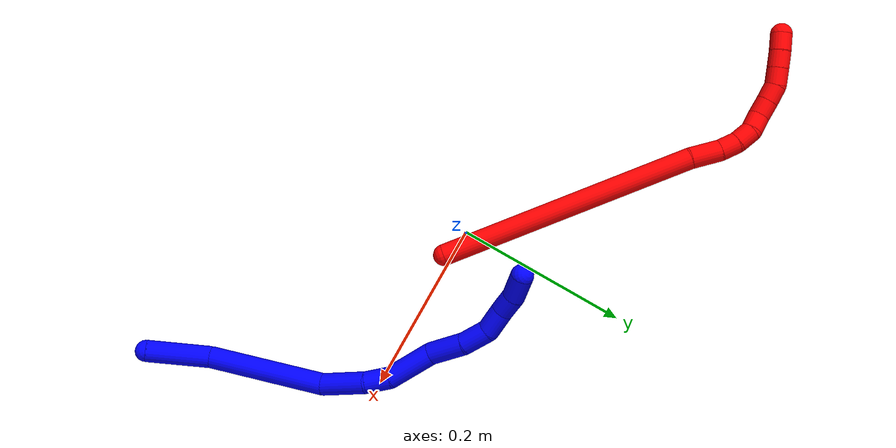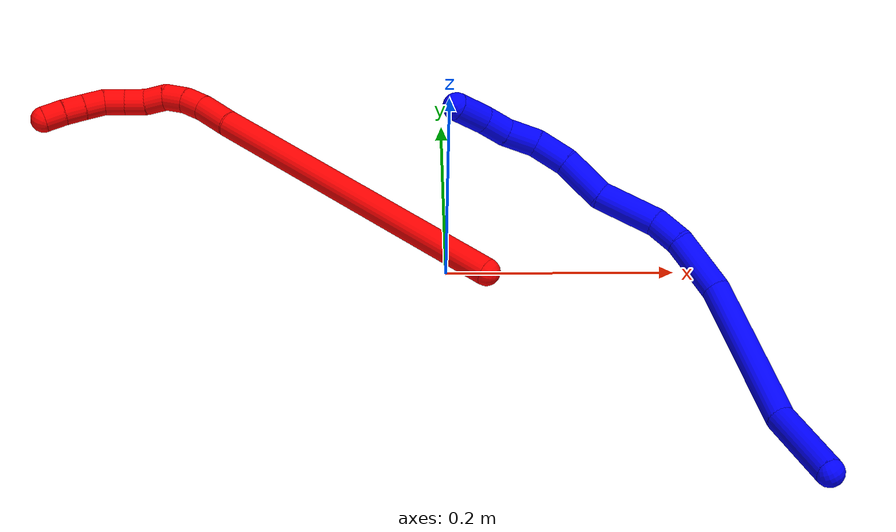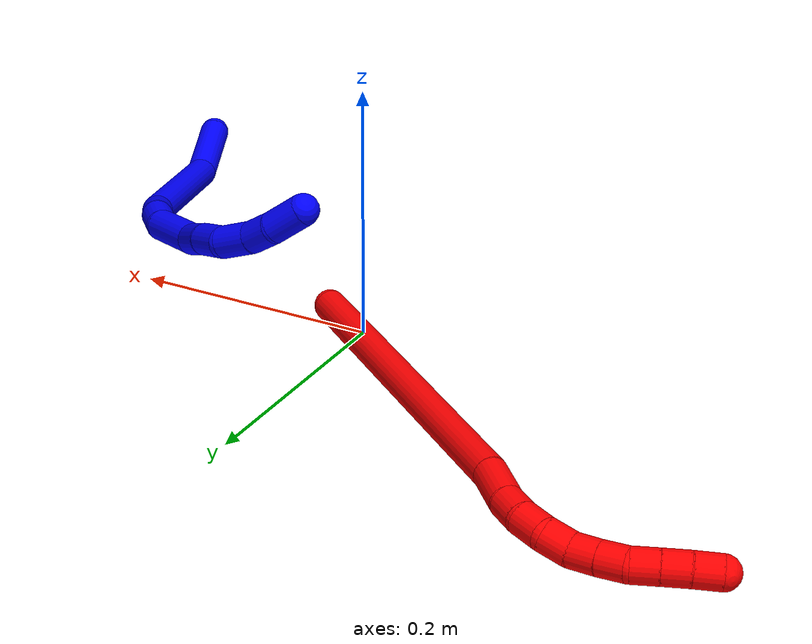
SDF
<sdf version="1.7">
 <world name="default">
  <model name="1">
   <static>0</static>
   <link name="1">
    <collision name="collision-cylinder-e_1_1_4">
     <pose>0.033252 0.004194 0.014067 -0.289757 1.15507 -0.189582</pose>
     <geometry><cylinder><radius>0.0125</radius><length>0.072695</length></cylinder></geometry>
     <surface>
      <friction><ode><mu>1.16</mu><mu2>1.16</mu2><slip1>0</slip1><slip2>0</slip2></ode></friction>
      <contact><ode><kp>1e+06</kp><kd>1</kd><max_vel>0</max_vel><min_depth>0.001</min_depth></ode></contact>
     </surface>
    </collision>
    <visual name="visual-cylinder-e_1_1_4">
     <pose>0.033252 0.004194 0.014067 -0.289757 1.15507 -0.189582</pose>
     <geometry><cylinder><radius>0.0125</radius><length>0.072695</length></cylinder></geometry>
     <material><ambient>0 0 1 1</ambient></material>
    </visual>
    <collision name="collision-cylinder-e_2_4_5">
     <pose>0.120568 0.003093 0.068982 0.128926 0.919756 0.063923</pose>
     <geometry><cylinder><radius>0.0125</radius><length>0.135935</length></cylinder></geometry>
     <surface>
      <friction><ode><mu>1.16</mu><mu2>1.16</mu2><slip1>0</slip1><slip2>0</slip2></ode></friction>
      <contact><ode><kp>1e+06</kp><kd>1</kd><max_vel>0</max_vel><min_depth>0.001</min_depth></ode></contact>
     </surface>
    </collision>
    <visual name="visual-cylinder-e_2_4_5">
     <pose>0.120568 0.003093 0.068982 0.128926 0.919756 0.063923</pose>
     <geometry><cylinder><radius>0.0125</radius><length>0.135935</length></cylinder></geometry>
     <material><ambient>0 0 1 1</ambient></material>
    </visual>
    <collision name="collision-cylinder-e_3_5_6">
     <pose>0.190526 0.001141 0.130678 -0.159041 0.645202 -0.053264</pose>
     <geometry><cylinder><radius>0.0125</radius><length>0.052855</length></cylinder></geometry>
     <surface>
      <friction><ode><mu>1.16</mu><mu2>1.16</mu2><slip1>0</slip1><slip2>0</slip2></ode></friction>
      <contact><ode><kp>1e+06</kp><kd>1</kd><max_vel>0</max_vel><min_depth>0.001</min_depth></ode></contact>
     </surface>
    </collision>
    <visual name="visual-cylinder-e_3_5_6">
     <pose>0.190526 0.001141 0.130678 -0.159041 0.645202 -0.053264</pose>
     <geometry><cylinder><radius>0.0125</radius><length>0.052855</length></cylinder></geometry>
     <material><ambient>0 0 1 1</ambient></material>
    </visual>
    <collision name="collision-cylinder-e_4_6_7">
     <pose>0.215927 0.008959 0.160874 -0.446444 0.742436 -0.176272</pose>
     <geometry><cylinder><radius>0.0125</radius><length>0.028128</length></cylinder></geometry>
     <surface>
      <friction><ode><mu>1.16</mu><mu2>1.16</mu2><slip1>0</slip1><slip2>0</slip2></ode></friction>
      <contact><ode><kp>1e+06</kp><kd>1</kd><max_vel>0</max_vel><min_depth>0.001</min_depth></ode></contact>
     </surface>
    </collision>
    <visual name="visual-cylinder-e_4_6_7">
     <pose>0.215927 0.008959 0.160874 -0.446444 0.742436 -0.176272</pose>
     <geometry><cylinder><radius>0.0125</radius><length>0.028128</length></cylinder></geometry>
     <material><ambient>0 0 1 1</ambient></material>
    </visual>
    <collision name="collision-cylinder-e_5_7_8">
     <pose>0.237923 0.028869 0.188645 -0.697341 0.479174 -0.177137</pose>
     <geometry><cylinder><radius>0.0125</radius><length>0.054172</length></cylinder></geometry>
     <surface>
      <friction><ode><mu>1.16</mu><mu2>1.16</mu2><slip1>0</slip1><slip2>0</slip2></ode></friction>
      <contact><ode><kp>1e+06</kp><kd>1</kd><max_vel>0</max_vel><min_depth>0.001</min_depth></ode></contact>
     </surface>
    </collision>
    <visual name="visual-cylinder-e_5_7_8">
     <pose>0.237923 0.028869 0.188645 -0.697341 0.479174 -0.177137</pose>
     <geometry><cylinder><radius>0.0125</radius><length>0.054172</length></cylinder></geometry>
     <material><ambient>0 0 1 1</ambient></material>
    </visual>
    <collision name="collision-cylinder-e_6_8_9">
     <pose>0.259709 0.050414 0.224819 -0.331558 0.459903 -0.078294</pose>
     <geometry><cylinder><radius>0.0125</radius><length>0.041896</length></cylinder></geometry>
     <surface>
      <friction><ode><mu>1.16</mu><mu2>1.16</mu2><slip1>0</slip1><slip2>0</slip2></ode></friction>
      <contact><ode><kp>1e+06</kp><kd>1</kd><max_vel>0</max_vel><min_depth>0.001</min_depth></ode></contact>
     </surface>
    </collision>
    <visual name="visual-cylinder-e_6_8_9">
     <pose>0.259709 0.050414 0.224819 -0.331558 0.459903 -0.078294</pose>
     <geometry><cylinder><radius>0.0125</radius><length>0.041896</length></cylinder></geometry>
     <material><ambient>0 0 1 1</ambient></material>
    </visual>
    <collision name="collision-cylinder-e_7_9_10">
     <pose>0.275154 0.064221 0.254869 -0.559074 0.400688 -0.116451</pose>
     <geometry><cylinder><radius>0.0125</radius><length>0.031518</length></cylinder></geometry>
     <surface>
      <friction><ode><mu>1.16</mu><mu2>1.16</mu2><slip1>0</slip1><slip2>0</slip2></ode></friction>
      <contact><ode><kp>1e+06</kp><kd>1</kd><max_vel>0</max_vel><min_depth>0.001</min_depth></ode></contact>
     </surface>
    </collision>
    <visual name="visual-cylinder-e_7_9_10">
     <pose>0.275154 0.064221 0.254869 -0.559074 0.400688 -0.116451</pose>
     <geometry><cylinder><radius>0.0125</radius><length>0.031518</length></cylinder></geometry>
     <material><ambient>0 0 1 1</ambient></material>
    </visual>
    <collision name="collision-cylinder-e_8_10_11">
     <pose>0.281408 0.081765 0.277946 -0.740419 0.007378 -0.002864</pose>
     <geometry><cylinder><radius>0.0125</radius><length>0.029196</length></cylinder></geometry>
     <surface>
      <friction><ode><mu>1.16</mu><mu2>1.16</mu2><slip1>0</slip1><slip2>0</slip2></ode></friction>
      <contact><ode><kp>1e+06</kp><kd>1</kd><max_vel>0</max_vel><min_depth>0.001</min_depth></ode></contact>
     </surface>
    </collision>
    <visual name="visual-cylinder-e_8_10_11">
     <pose>0.281408 0.081765 0.277946 -0.740419 0.007378 -0.002864</pose>
     <geometry><cylinder><radius>0.0125</radius><length>0.029196</length></cylinder></geometry>
     <material><ambient>0 0 1 1</ambient></material>
    </visual>
    <collision name="collision-cylinder-e_9_11_12">
     <pose>0.280749 0.097804 0.298731 -0.553933 -0.065076 0.018505</pose>
     <geometry><cylinder><radius>0.0125</radius><length>0.023588</length></cylinder></geometry>
     <surface>
      <friction><ode><mu>1.16</mu><mu2>1.16</mu2><slip1>0</slip1><slip2>0</slip2></ode></friction>
      <contact><ode><kp>1e+06</kp><kd>1</kd><max_vel>0</max_vel><min_depth>0.001</min_depth></ode></contact>
     </surface>
    </collision>
    <visual name="visual-cylinder-e_9_11_12">
     <pose>0.280749 0.097804 0.298731 -0.553933 -0.065076 0.018505</pose>
     <geometry><cylinder><radius>0.0125</radius><length>0.023588</length></cylinder></geometry>
     <material><ambient>0 0 1 1</ambient></material>
    </visual>
    <collision name="collision-cylinder-e_10_12_2">
     <pose>0.275642 0.112104 0.3206 -0.59972 -0.293368 0.091297</pose>
     <geometry><cylinder><radius>0.0125</radius><length>0.030016</length></cylinder></geometry>
     <surface>
      <friction><ode><mu>1.16</mu><mu2>1.16</mu2><slip1>0</slip1><slip2>0</slip2></ode></friction>
      <contact><ode><kp>1e+06</kp><kd>1</kd><max_vel>0</max_vel><min_depth>0.001</min_depth></ode></contact>
     </surface>
    </collision>
    <visual name="visual-cylinder-e_10_12_2">
     <pose>0.275642 0.112104 0.3206 -0.59972 -0.293368 0.091297</pose>
     <geometry><cylinder><radius>0.0125</radius><length>0.030016</length></cylinder></geometry>
     <material><ambient>0 0 1 1</ambient></material>
    </visual>
    <collision name="collision-sphere-2">
     <pose>0.271302 0.120212 0.33246 0 -0 0</pose>
     <geometry><sphere><radius>0.0125</radius></sphere></geometry>
     <surface>
      <friction><ode><mu>1.16</mu><mu2>1.16</mu2><slip1>0</slip1><slip2>0</slip2></ode></friction>
      <contact><ode><kp>1e+06</kp><kd>1</kd><max_vel>0</max_vel><min_depth>0.001</min_depth></ode></contact>
     </surface>
    </collision>
    <visual name="visual-sphere-2">
     <pose>0.271302 0.120212 0.33246 0 -0 0</pose>
     <geometry><sphere><radius>0.0125</radius></sphere></geometry>
     <material><ambient>0 0 1 1</ambient></material>
    </visual>
    <collision name="collision-sphere-12">
     <pose>0.279982 0.103995 0.308741 0 -0 0</pose>
     <geometry><sphere><radius>0.0125</radius></sphere></geometry>
     <surface>
      <friction><ode><mu>1.16</mu><mu2>1.16</mu2><slip1>0</slip1><slip2>0</slip2></ode></friction>
      <contact><ode><kp>1e+06</kp><kd>1</kd><max_vel>0</max_vel><min_depth>0.001</min_depth></ode></contact>
     </surface>
    </collision>
    <visual name="visual-sphere-12">
     <pose>0.279982 0.103995 0.308741 0 -0 0</pose>
     <geometry><sphere><radius>0.0125</radius></sphere></geometry>
     <material><ambient>0 0 1 1</ambient></material>
    </visual>
    <collision name="collision-sphere-11">
     <pose>0.281516 0.091613 0.288722 0 -0 0</pose>
     <geometry><sphere><radius>0.0125</radius></sphere></geometry>
     <surface>
      <friction><ode><mu>1.16</mu><mu2>1.16</mu2><slip1>0</slip1><slip2>0</slip2></ode></friction>
      <contact><ode><kp>1e+06</kp><kd>1</kd><max_vel>0</max_vel><min_depth>0.001</min_depth></ode></contact>
     </surface>
    </collision>
    <visual name="visual-sphere-11">
     <pose>0.281516 0.091613 0.288722 0 -0 0</pose>
     <geometry><sphere><radius>0.0125</radius></sphere></geometry>
     <material><ambient>0 0 1 1</ambient></material>
    </visual>
    <collision name="collision-sphere-10">
     <pose>0.2813 0.071917 0.26717 0 -0 0</pose>
     <geometry><sphere><radius>0.0125</radius></sphere></geometry>
     <surface>
      <friction><ode><mu>1.16</mu><mu2>1.16</mu2><slip1>0</slip1><slip2>0</slip2></ode></friction>
      <contact><ode><kp>1e+06</kp><kd>1</kd><max_vel>0</max_vel><min_depth>0.001</min_depth></ode></contact>
     </surface>
    </collision>
    <visual name="visual-sphere-10">
     <pose>0.2813 0.071917 0.26717 0 -0 0</pose>
     <geometry><sphere><radius>0.0125</radius></sphere></geometry>
     <material><ambient>0 0 1 1</ambient></material>
    </visual>
    <collision name="collision-sphere-9">
     <pose>0.269007 0.056525 0.242568 0 -0 0</pose>
     <geometry><sphere><radius>0.0125</radius></sphere></geometry>
     <surface>
      <friction><ode><mu>1.16</mu><mu2>1.16</mu2><slip1>0</slip1><slip2>0</slip2></ode></friction>
      <contact><ode><kp>1e+06</kp><kd>1</kd><max_vel>0</max_vel><min_depth>0.001</min_depth></ode></contact>
     </surface>
    </collision>
    <visual name="visual-sphere-9">
     <pose>0.269007 0.056525 0.242568 0 -0 0</pose>
     <geometry><sphere><radius>0.0125</radius></sphere></geometry>
     <material><ambient>0 0 1 1</ambient></material>
    </visual>
    <collision name="collision-sphere-4">
     <pose>0.066503 0.008388 0.028135 0 -0 0</pose>
     <geometry><sphere><radius>0.0125</radius></sphere></geometry>
     <surface>
      <friction><ode><mu>1.16</mu><mu2>1.16</mu2><slip1>0</slip1><slip2>0</slip2></ode></friction>
      <contact><ode><kp>1e+06</kp><kd>1</kd><max_vel>0</max_vel><min_depth>0.001</min_depth></ode></contact>
     </surface>
    </collision>
    <visual name="visual-sphere-4">
     <pose>0.066503 0.008388 0.028135 0 -0 0</pose>
     <geometry><sphere><radius>0.0125</radius></sphere></geometry>
     <material><ambient>0 0 1 1</ambient></material>
    </visual>
    <collision name="collision-sphere-1">
     <geometry><sphere><radius>0.0125</radius></sphere></geometry>
     <surface>
      <friction><ode><mu>1.16</mu><mu2>1.16</mu2><slip1>0</slip1><slip2>0</slip2></ode></friction>
      <contact><ode><kp>1e+06</kp><kd>1</kd><max_vel>0</max_vel><min_depth>0.001</min_depth></ode></contact>
     </surface>
    </collision>
    <visual name="visual-sphere-1">
     <geometry><sphere><radius>0.0125</radius></sphere></geometry>
     <material><ambient>0 0 1 1</ambient></material>
    </visual>
    <collision name="collision-sphere-8">
     <pose>0.250411 0.044304 0.20707 0 -0 0</pose>
     <geometry><sphere><radius>0.0125</radius></sphere></geometry>
     <surface>
      <friction><ode><mu>1.16</mu><mu2>1.16</mu2><slip1>0</slip1><slip2>0</slip2></ode></friction>
      <contact><ode><kp>1e+06</kp><kd>1</kd><max_vel>0</max_vel><min_depth>0.001</min_depth></ode></contact>
     </surface>
    </collision>
    <visual name="visual-sphere-8">
     <pose>0.250411 0.044304 0.20707 0 -0 0</pose>
     <geometry><sphere><radius>0.0125</radius></sphere></geometry>
     <material><ambient>0 0 1 1</ambient></material>
    </visual>
    <collision name="collision-sphere-5">
     <pose>0.174633 -0.002203 0.109829 0 -0 0</pose>
     <geometry><sphere><radius>0.0125</radius></sphere></geometry>
     <surface>
      <friction><ode><mu>1.16</mu><mu2>1.16</mu2><slip1>0</slip1><slip2>0</slip2></ode></friction>
      <contact><ode><kp>1e+06</kp><kd>1</kd><max_vel>0</max_vel><min_depth>0.001</min_depth></ode></contact>
     </surface>
    </collision>
    <visual name="visual-sphere-5">
     <pose>0.174633 -0.002203 0.109829 0 -0 0</pose>
     <geometry><sphere><radius>0.0125</radius></sphere></geometry>
     <material><ambient>0 0 1 1</ambient></material>
    </visual>
    <collision name="collision-sphere-6">
     <pose>0.206418 0.004485 0.151527 0 -0 0</pose>
     <geometry><sphere><radius>0.0125</radius></sphere></geometry>
     <surface>
      <friction><ode><mu>1.16</mu><mu2>1.16</mu2><slip1>0</slip1><slip2>0</slip2></ode></friction>
      <contact><ode><kp>1e+06</kp><kd>1</kd><max_vel>0</max_vel><min_depth>0.001</min_depth></ode></contact>
     </surface>
    </collision>
    <visual name="visual-sphere-6">
     <pose>0.206418 0.004485 0.151527 0 -0 0</pose>
     <geometry><sphere><radius>0.0125</radius></sphere></geometry>
     <material><ambient>0 0 1 1</ambient></material>
    </visual>
    <collision name="collision-sphere-7">
     <pose>0.225435 0.013434 0.170221 0 -0 0</pose>
     <geometry><sphere><radius>0.0125</radius></sphere></geometry>
     <surface>
      <friction><ode><mu>1.16</mu><mu2>1.16</mu2><slip1>0</slip1><slip2>0</slip2></ode></friction>
      <contact><ode><kp>1e+06</kp><kd>1</kd><max_vel>0</max_vel><min_depth>0.001</min_depth></ode></contact>
     </surface>
    </collision>
    <visual name="visual-sphere-7">
     <pose>0.225435 0.013434 0.170221 0 -0 0</pose>
     <geometry><sphere><radius>0.0125</radius></sphere></geometry>
     <material><ambient>0 0 1 1</ambient></material>
    </visual>
    <inertial>
     <pose>0.181009 0.029594 0.148575 0 -0 0</pose>
     <mass>0.5</mass>
     <inertia>
      <ixx>0.000212</ixx>
      <ixy>0</ixy>
      <ixz>0</ixz>
      <iyy>0.000306</iyy>
      <iyz>0</iyz>
      <izz>-0.000206</izz>
     </inertia>
    </inertial>
   </link>
   <pose>0.297151 -0.249618 0.02208 -0.394874 0.47195 1.71455</pose>
  </model>
  <model name="2">
   <static>0</static>
   <link name="2">
    <collision name="collision-cylinder-e_1_1_4">
     <pose>-0.000966 8.5e-05 0.150615 -0.000562 -0.006411 2e-06</pose>
     <geometry><cylinder><radius>0.0125</radius><length>0.301236</length></cylinder></geometry>
     <surface>
      <friction><ode><mu>1.16</mu><mu2>1.16</mu2><slip1>0</slip1><slip2>0</slip2></ode></friction>
      <contact><ode><kp>1e+06</kp><kd>1</kd><max_vel>0</max_vel><min_depth>0.001</min_depth></ode></contact>
     </surface>
    </collision>
    <visual name="visual-cylinder-e_1_1_4">
     <pose>-0.000966 8.5e-05 0.150615 -0.000562 -0.006411 2e-06</pose>
     <geometry><cylinder><radius>0.0125</radius><length>0.301236</length></cylinder></geometry>
     <material><ambient>1 0 0 1</ambient></material>
    </visual>
    <collision name="collision-cylinder-e_2_4_5">
     <pose>-0.003415 0.002323 0.318659 -0.122954 -0.084286 0.005191</pose>
     <geometry><cylinder><radius>0.0125</radius><length>0.035248</length></cylinder></geometry>
     <surface>
      <friction><ode><mu>1.16</mu><mu2>1.16</mu2><slip1>0</slip1><slip2>0</slip2></ode></friction>
      <contact><ode><kp>1e+06</kp><kd>1</kd><max_vel>0</max_vel><min_depth>0.001</min_depth></ode></contact>
     </surface>
    </collision>
    <visual name="visual-cylinder-e_2_4_5">
     <pose>-0.003415 0.002323 0.318659 -0.122954 -0.084286 0.005191</pose>
     <geometry><cylinder><radius>0.0125</radius><length>0.035248</length></cylinder></geometry>
     <material><ambient>1 0 0 1</ambient></material>
    </visual>
    <collision name="collision-cylinder-e_3_5_6">
     <pose>-0.005783 0.003922 0.346744 0.05206 -0.08269 -0.002154</pose>
     <geometry><cylinder><radius>0.0125</radius><length>0.021413</length></cylinder></geometry>
     <surface>
      <friction><ode><mu>1.16</mu><mu2>1.16</mu2><slip1>0</slip1><slip2>0</slip2></ode></friction>
      <contact><ode><kp>1e+06</kp><kd>1</kd><max_vel>0</max_vel><min_depth>0.001</min_depth></ode></contact>
     </surface>
    </collision>
    <visual name="visual-cylinder-e_3_5_6">
     <pose>-0.005783 0.003922 0.346744 0.05206 -0.08269 -0.002154</pose>
     <geometry><cylinder><radius>0.0125</radius><length>0.021413</length></cylinder></geometry>
     <material><ambient>1 0 0 1</ambient></material>
    </visual>
    <collision name="collision-cylinder-e_4_6_7">
     <pose>-0.008414 0.000328 0.367518 0.291677 -0.163874 -0.024123</pose>
     <geometry><cylinder><radius>0.0125</radius><length>0.021418</length></cylinder></geometry>
     <surface>
      <friction><ode><mu>1.16</mu><mu2>1.16</mu2><slip1>0</slip1><slip2>0</slip2></ode></friction>
      <contact><ode><kp>1e+06</kp><kd>1</kd><max_vel>0</max_vel><min_depth>0.001</min_depth></ode></contact>
     </surface>
    </collision>
    <visual name="visual-cylinder-e_4_6_7">
     <pose>-0.008414 0.000328 0.367518 0.291677 -0.163874 -0.024123</pose>
     <geometry><cylinder><radius>0.0125</radius><length>0.021418</length></cylinder></geometry>
     <material><ambient>1 0 0 1</ambient></material>
    </visual>
    <collision name="collision-cylinder-e_5_7_8">
     <pose>-0.013954 -0.008576 0.385202 0.659583 -0.377192 -0.130477</pose>
     <geometry><cylinder><radius>0.0125</radius><length>0.020593</length></cylinder></geometry>
     <surface>
      <friction><ode><mu>1.16</mu><mu2>1.16</mu2><slip1>0</slip1><slip2>0</slip2></ode></friction>
      <contact><ode><kp>1e+06</kp><kd>1</kd><max_vel>0</max_vel><min_depth>0.001</min_depth></ode></contact>
     </surface>
    </collision>
    <visual name="visual-cylinder-e_5_7_8">
     <pose>-0.013954 -0.008576 0.385202 0.659583 -0.377192 -0.130477</pose>
     <geometry><cylinder><radius>0.0125</radius><length>0.020593</length></cylinder></geometry>
     <material><ambient>1 0 0 1</ambient></material>
    </visual>
    <collision name="collision-cylinder-e_6_8_9">
     <pose>-0.018555 -0.020653 0.4006 0.670418 -0.080732 -0.028137</pose>
     <geometry><cylinder><radius>0.0125</radius><length>0.020059</length></cylinder></geometry>
     <surface>
      <friction><ode><mu>1.16</mu><mu2>1.16</mu2><slip1>0</slip1><slip2>0</slip2></ode></friction>
      <contact><ode><kp>1e+06</kp><kd>1</kd><max_vel>0</max_vel><min_depth>0.001</min_depth></ode></contact>
     </surface>
    </collision>
    <visual name="visual-cylinder-e_6_8_9">
     <pose>-0.018555 -0.020653 0.4006 0.670418 -0.080732 -0.028137</pose>
     <geometry><cylinder><radius>0.0125</radius><length>0.020059</length></cylinder></geometry>
     <material><ambient>1 0 0 1</ambient></material>
    </visual>
    <collision name="collision-cylinder-e_7_9_10">
     <pose>-0.019828 -0.033408 0.415984 0.714075 -0.046498 -0.017348</pose>
     <geometry><cylinder><radius>0.0125</radius><length>0.020005</length></cylinder></geometry>
     <surface>
      <friction><ode><mu>1.16</mu><mu2>1.16</mu2><slip1>0</slip1><slip2>0</slip2></ode></friction>
      <contact><ode><kp>1e+06</kp><kd>1</kd><max_vel>0</max_vel><min_depth>0.001</min_depth></ode></contact>
     </surface>
    </collision>
    <visual name="visual-cylinder-e_7_9_10">
     <pose>-0.019828 -0.033408 0.415984 0.714075 -0.046498 -0.017348</pose>
     <geometry><cylinder><radius>0.0125</radius><length>0.020005</length></cylinder></geometry>
     <material><ambient>1 0 0 1</ambient></material>
    </visual>
    <collision name="collision-cylinder-e_8_10_11">
     <pose>-0.02107 -0.048605 0.428498 1.05004 -0.077702 -0.045024</pose>
     <geometry><cylinder><radius>0.0125</radius><length>0.020013</length></cylinder></geometry>
     <surface>
      <friction><ode><mu>1.16</mu><mu2>1.16</mu2><slip1>0</slip1><slip2>0</slip2></ode></friction>
      <contact><ode><kp>1e+06</kp><kd>1</kd><max_vel>0</max_vel><min_depth>0.001</min_depth></ode></contact>
     </surface>
    </collision>
    <visual name="visual-cylinder-e_8_10_11">
     <pose>-0.02107 -0.048605 0.428498 1.05004 -0.077702 -0.045024</pose>
     <geometry><cylinder><radius>0.0125</radius><length>0.020013</length></cylinder></geometry>
     <material><ambient>1 0 0 1</ambient></material>
    </visual>
    <collision name="collision-cylinder-e_9_11_12">
     <pose>-0.022768 -0.065965 0.438308 1.06279 -0.092217 -0.05423</pose>
     <geometry><cylinder><radius>0.0125</radius><length>0.020013</length></cylinder></geometry>
     <surface>
      <friction><ode><mu>1.16</mu><mu2>1.16</mu2><slip1>0</slip1><slip2>0</slip2></ode></friction>
      <contact><ode><kp>1e+06</kp><kd>1</kd><max_vel>0</max_vel><min_depth>0.001</min_depth></ode></contact>
     </surface>
    </collision>
    <visual name="visual-cylinder-e_9_11_12">
     <pose>-0.022768 -0.065965 0.438308 1.06279 -0.092217 -0.05423</pose>
     <geometry><cylinder><radius>0.0125</radius><length>0.020013</length></cylinder></geometry>
     <material><ambient>1 0 0 1</ambient></material>
    </visual>
    <collision name="collision-cylinder-e_10_12_2">
     <pose>-0.025233 -0.083504 0.447583 1.10617 -0.154929 -0.095765</pose>
     <geometry><cylinder><radius>0.0125</radius><length>0.020002</length></cylinder></geometry>
     <surface>
      <friction><ode><mu>1.16</mu><mu2>1.16</mu2><slip1>0</slip1><slip2>0</slip2></ode></friction>
      <contact><ode><kp>1e+06</kp><kd>1</kd><max_vel>0</max_vel><min_depth>0.001</min_depth></ode></contact>
     </surface>
    </collision>
    <visual name="visual-cylinder-e_10_12_2">
     <pose>-0.025233 -0.083504 0.447583 1.10617 -0.154929 -0.095765</pose>
     <geometry><cylinder><radius>0.0125</radius><length>0.020002</length></cylinder></geometry>
     <material><ambient>1 0 0 1</ambient></material>
    </visual>
    <collision name="collision-sphere-2">
     <pose>-0.026776 -0.092338 0.452011 0 -0 0</pose>
     <geometry><sphere><radius>0.0125</radius></sphere></geometry>
     <surface>
      <friction><ode><mu>1.16</mu><mu2>1.16</mu2><slip1>0</slip1><slip2>0</slip2></ode></friction>
      <contact><ode><kp>1e+06</kp><kd>1</kd><max_vel>0</max_vel><min_depth>0.001</min_depth></ode></contact>
     </surface>
    </collision>
    <visual name="visual-sphere-2">
     <pose>-0.026776 -0.092338 0.452011 0 -0 0</pose>
     <geometry><sphere><radius>0.0125</radius></sphere></geometry>
     <material><ambient>1 0 0 1</ambient></material>
    </visual>
    <collision name="collision-sphere-12">
     <pose>-0.02369 -0.07467 0.443155 0 -0 0</pose>
     <geometry><sphere><radius>0.0125</radius></sphere></geometry>
     <surface>
      <friction><ode><mu>1.16</mu><mu2>1.16</mu2><slip1>0</slip1><slip2>0</slip2></ode></friction>
      <contact><ode><kp>1e+06</kp><kd>1</kd><max_vel>0</max_vel><min_depth>0.001</min_depth></ode></contact>
     </surface>
    </collision>
    <visual name="visual-sphere-12">
     <pose>-0.02369 -0.07467 0.443155 0 -0 0</pose>
     <geometry><sphere><radius>0.0125</radius></sphere></geometry>
     <material><ambient>1 0 0 1</ambient></material>
    </visual>
    <collision name="collision-sphere-11">
     <pose>-0.021847 -0.057259 0.433462 0 -0 0</pose>
     <geometry><sphere><radius>0.0125</radius></sphere></geometry>
     <surface>
      <friction><ode><mu>1.16</mu><mu2>1.16</mu2><slip1>0</slip1><slip2>0</slip2></ode></friction>
      <contact><ode><kp>1e+06</kp><kd>1</kd><max_vel>0</max_vel><min_depth>0.001</min_depth></ode></contact>
     </surface>
    </collision>
    <visual name="visual-sphere-11">
     <pose>-0.021847 -0.057259 0.433462 0 -0 0</pose>
     <geometry><sphere><radius>0.0125</radius></sphere></geometry>
     <material><ambient>1 0 0 1</ambient></material>
    </visual>
    <collision name="collision-sphere-10">
     <pose>-0.020293 -0.039951 0.423534 0 -0 0</pose>
     <geometry><sphere><radius>0.0125</radius></sphere></geometry>
     <surface>
      <friction><ode><mu>1.16</mu><mu2>1.16</mu2><slip1>0</slip1><slip2>0</slip2></ode></friction>
      <contact><ode><kp>1e+06</kp><kd>1</kd><max_vel>0</max_vel><min_depth>0.001</min_depth></ode></contact>
     </surface>
    </collision>
    <visual name="visual-sphere-10">
     <pose>-0.020293 -0.039951 0.423534 0 -0 0</pose>
     <geometry><sphere><radius>0.0125</radius></sphere></geometry>
     <material><ambient>1 0 0 1</ambient></material>
    </visual>
    <collision name="collision-sphere-9">
     <pose>-0.019364 -0.026864 0.408433 0 -0 0</pose>
     <geometry><sphere><radius>0.0125</radius></sphere></geometry>
     <surface>
      <friction><ode><mu>1.16</mu><mu2>1.16</mu2><slip1>0</slip1><slip2>0</slip2></ode></friction>
      <contact><ode><kp>1e+06</kp><kd>1</kd><max_vel>0</max_vel><min_depth>0.001</min_depth></ode></contact>
     </surface>
    </collision>
    <visual name="visual-sphere-9">
     <pose>-0.019364 -0.026864 0.408433 0 -0 0</pose>
     <geometry><sphere><radius>0.0125</radius></sphere></geometry>
     <material><ambient>1 0 0 1</ambient></material>
    </visual>
    <collision name="collision-sphere-4">
     <pose>-0.001931 0.000169 0.30123 0 -0 0</pose>
     <geometry><sphere><radius>0.0125</radius></sphere></geometry>
     <surface>
      <friction><ode><mu>1.16</mu><mu2>1.16</mu2><slip1>0</slip1><slip2>0</slip2></ode></friction>
      <contact><ode><kp>1e+06</kp><kd>1</kd><max_vel>0</max_vel><min_depth>0.001</min_depth></ode></contact>
     </surface>
    </collision>
    <visual name="visual-sphere-4">
     <pose>-0.001931 0.000169 0.30123 0 -0 0</pose>
     <geometry><sphere><radius>0.0125</radius></sphere></geometry>
     <material><ambient>1 0 0 1</ambient></material>
    </visual>
    <collision name="collision-sphere-1">
     <geometry><sphere><radius>0.0125</radius></sphere></geometry>
     <surface>
      <friction><ode><mu>1.16</mu><mu2>1.16</mu2><slip1>0</slip1><slip2>0</slip2></ode></friction>
      <contact><ode><kp>1e+06</kp><kd>1</kd><max_vel>0</max_vel><min_depth>0.001</min_depth></ode></contact>
     </surface>
    </collision>
    <visual name="visual-sphere-1">
     <geometry><sphere><radius>0.0125</radius></sphere></geometry>
     <material><ambient>1 0 0 1</ambient></material>
    </visual>
    <collision name="collision-sphere-8">
     <pose>-0.017746 -0.014442 0.392767 0 -0 0</pose>
     <geometry><sphere><radius>0.0125</radius></sphere></geometry>
     <surface>
      <friction><ode><mu>1.16</mu><mu2>1.16</mu2><slip1>0</slip1><slip2>0</slip2></ode></friction>
      <contact><ode><kp>1e+06</kp><kd>1</kd><max_vel>0</max_vel><min_depth>0.001</min_depth></ode></contact>
     </surface>
    </collision>
    <visual name="visual-sphere-8">
     <pose>-0.017746 -0.014442 0.392767 0 -0 0</pose>
     <geometry><sphere><radius>0.0125</radius></sphere></geometry>
     <material><ambient>1 0 0 1</ambient></material>
    </visual>
    <collision name="collision-sphere-5">
     <pose>-0.004899 0.004477 0.336088 0 -0 0</pose>
     <geometry><sphere><radius>0.0125</radius></sphere></geometry>
     <surface>
      <friction><ode><mu>1.16</mu><mu2>1.16</mu2><slip1>0</slip1><slip2>0</slip2></ode></friction>
      <contact><ode><kp>1e+06</kp><kd>1</kd><max_vel>0</max_vel><min_depth>0.001</min_depth></ode></contact>
     </surface>
    </collision>
    <visual name="visual-sphere-5">
     <pose>-0.004899 0.004477 0.336088 0 -0 0</pose>
     <geometry><sphere><radius>0.0125</radius></sphere></geometry>
     <material><ambient>1 0 0 1</ambient></material>
    </visual>
    <collision name="collision-sphere-6">
     <pose>-0.006667 0.003367 0.357399 0 -0 0</pose>
     <geometry><sphere><radius>0.0125</radius></sphere></geometry>
     <surface>
      <friction><ode><mu>1.16</mu><mu2>1.16</mu2><slip1>0</slip1><slip2>0</slip2></ode></friction>
      <contact><ode><kp>1e+06</kp><kd>1</kd><max_vel>0</max_vel><min_depth>0.001</min_depth></ode></contact>
     </surface>
    </collision>
    <visual name="visual-sphere-6">
     <pose>-0.006667 0.003367 0.357399 0 -0 0</pose>
     <geometry><sphere><radius>0.0125</radius></sphere></geometry>
     <material><ambient>1 0 0 1</ambient></material>
    </visual>
    <collision name="collision-sphere-7">
     <pose>-0.010161 -0.00271 0.377638 0 -0 0</pose>
     <geometry><sphere><radius>0.0125</radius></sphere></geometry>
     <surface>
      <friction><ode><mu>1.16</mu><mu2>1.16</mu2><slip1>0</slip1><slip2>0</slip2></ode></friction>
      <contact><ode><kp>1e+06</kp><kd>1</kd><max_vel>0</max_vel><min_depth>0.001</min_depth></ode></contact>
     </surface>
    </collision>
    <visual name="visual-sphere-7">
     <pose>-0.010161 -0.00271 0.377638 0 -0 0</pose>
     <geometry><sphere><radius>0.0125</radius></sphere></geometry>
     <material><ambient>1 0 0 1</ambient></material>
    </visual>
    <inertial>
     <pose>-0.006307 -0.010048 0.244978 0 -0 0</pose>
     <mass>0.5</mass>
     <inertia>
      <ixx>0.002304</ixx>
      <ixy>0</ixy>
      <ixz>0</ixz>
      <iyy>0.002296</iyy>
      <iyz>0</iyz>
      <izz>5.7e-05</izz>
     </inertia>
    </inertial>
   </link>
   <pose>0.035074 -0.009366 0.011498 -0.989806 -1.48842 0.313724</pose>
  </model>
 </world>
</sdf>
